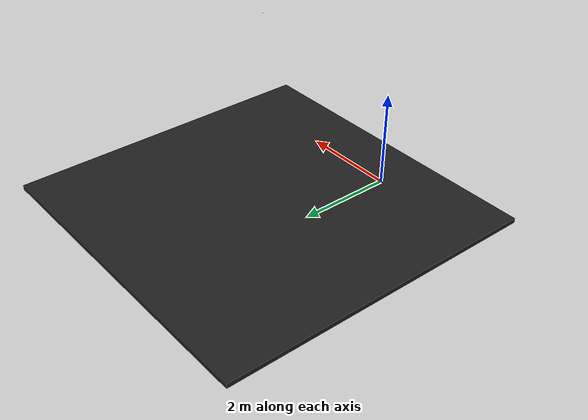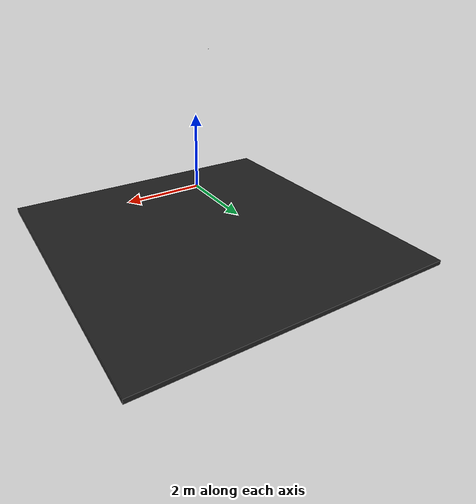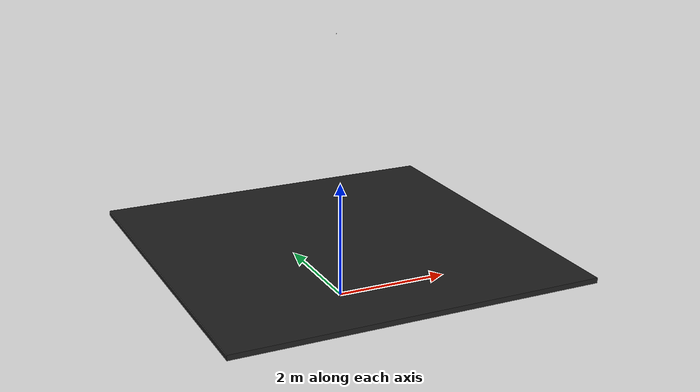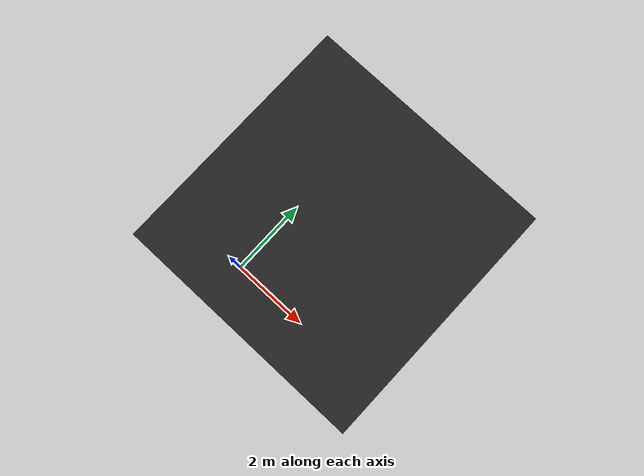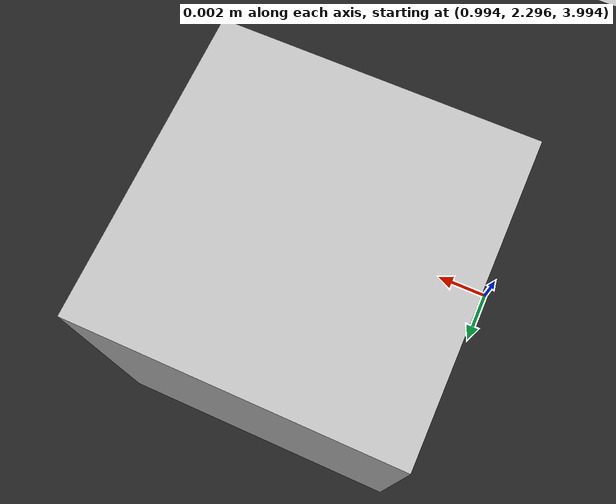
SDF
<sdf version="1.4">
 <world name="default">
  <scene><ambient>0 0 0 1</ambient><shadows>0</shadows><grid>0</grid><background>1 1 1 1</background></scene>
  <physics type="ode">
   <gravity>0 0 -9.8</gravity>
   <ode>
    <solver><type>quick</type><iters>10</iters><sor>1.3</sor></solver>
    <constraints>
     <cfm>0</cfm>
     <erp>0.1</erp>
     <contact_max_correcting_vel>10</contact_max_correcting_vel>
     <contact_surface_layer>0.001</contact_surface_layer>
    </constraints>
   </ode>
   <real_time_update_rate>1000</real_time_update_rate>
   <max_step_size>0.001</max_step_size>
   <real_time_factor>1</real_time_factor>
  </physics>
  <light name="sun" type="directional">
   <pose>0 0 10 0 -0 0</pose>
   <diffuse>0.8 0.8 0.8 1</diffuse>
   <specular>0.2 0.2 0.2 1</specular>
   <attenuation>
    <range>1000</range>
    <constant>0.9</constant>
    <linear>0.01</linear>
    <quadratic>0.001</quadratic>
   </attenuation>
   <direction>-0.5 0.1 -0.9</direction>
  </light>
  <model name="ground">
   <pose>1 2.3 -0.1 0 -0 0</pose>
   <static>1</static>
   <link name="ground">
    <collision name="ground_coll"><geometry><box><size>7 7 0.1</size></box></geometry></collision>
    <visual name="ground_vis">
     <geometry><box><size>7 7 0.1</size></box></geometry>
     <material>
      <script><uri>file:///home/chaser_drone/task_1_2.material</uri><name>blackline</name></script>
     </material>
    </visual>
    <velocity_decay><linear>0</linear><angular>0</angular></velocity_decay>
   </link>
   <link name="camera_link">
    <pose>0 0 4.1 0 1.57 0</pose>
    <inertial>
     <mass>0.1</mass>
     <inertia><ixx>1</ixx><ixy>0</ixy><ixz>0</ixz><iyy>1</iyy><iyz>0</iyz><izz>1</izz></inertia>
    </inertial>
    <collision name="collision"><geometry><box><size>0.01 0.01 0.01</size></box></geometry></collision>
    <visual name="visual"><geometry><box><size>0.01 0.01 0.01</size></box></geometry></visual>
    <sensor name="camera" type="camera">
     <camera name="__default__">
      <horizontal_fov>1.047</horizontal_fov>
      <image><width>640</width><height>480</height></image>
      <clip><near>0.1</near><far>100</far></clip>
     </camera>
     <plugin name="main_camera" filename="libgazebo_ros_camera.so">
      <cameraName>/main_camera</cameraName>
      <alwaysOn>true</alwaysOn>
      <updateRate>60</updateRate>
      <imageTopicName>/main/image_raw</imageTopicName>
      <cameraInfoTopicName>/main/camera_info</cameraInfoTopicName>
      <frameName>main_camera</frameName>
     </plugin>
     <pose>-3 0 0 0 0 0</pose>
    </sensor>
    <velocity_decay><linear>0</linear><angular>0</angular></velocity_decay>
   </link>
   <joint name="arena_camera_link" type="revolute">
    <child>camera_link</child>
    <parent>ground</parent>
    <axis><xyz>1 1 0</xyz><limit><lower>0</lower><upper>0</upper></limit></axis>
   </joint>
  </model>
  <spherical_coordinates>
   <surface_model>EARTH_WGS84</surface_model>
   <latitude_deg>0</latitude_deg>
   <longitude_deg>0</longitude_deg>
   <elevation>0</elevation>
   <heading_deg>0</heading_deg>
  </spherical_coordinates>
 </world>
</sdf>
